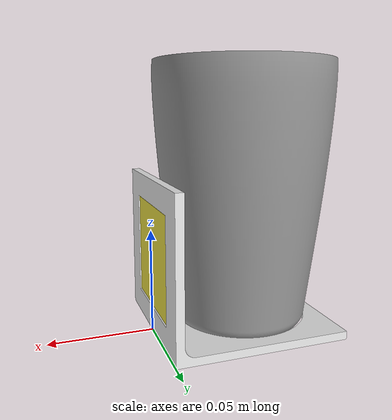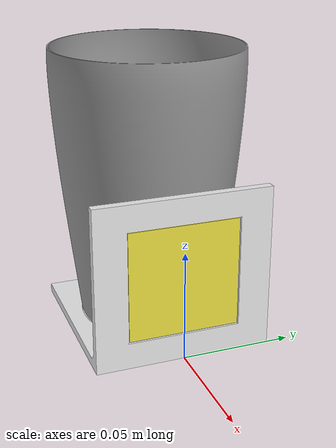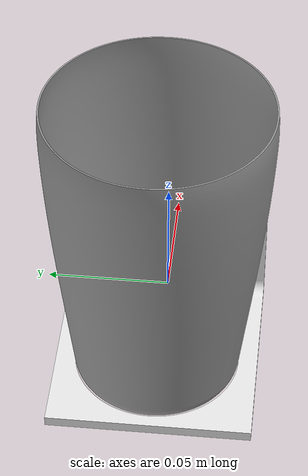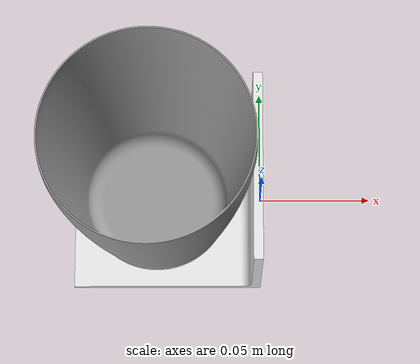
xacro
<?xml version="1.0"?>
<robot name="mixing_cup" xmlns:xacro="http://www.ros.org/wiki/xacro">
	<xacro:arg name="aruco_dae_path" default="bbot_aruco/markers/aruco_44_50mm.dae"/>
	<xacro:macro name="mixing_cup" params="aruco_dae_path">
		<gazebo reference="mixing_cup">
	        <material>Gazebo/Grey</material>
	        <mu1>0.2</mu1>
	        <mu2>0.2</mu2>
	    </gazebo>

	    <gazebo reference="aruco_holder">
	        <material>Gazebo/White</material>
	        <mu1>0.2</mu1>
	        <mu2>0.2</mu2>
	    </gazebo>
		<!-- * * * Link Definitions * * * -->
		<link name="base"/>
		<joint name="joint_base_to_holder" type="fixed">
	            <parent link="base"/>
	            <child link="aruco_holder"/>
	            <origin xyz="0 0 0" rpy="${pi/2.0} 0 ${-pi/2.0}"/>
	    </joint>

		<link name="aruco_holder">
			<inertial>
				<origin xyz="0.0 0 0" rpy="0.0 0 0"/>
				<mass value="0.01" />
				<inertia ixx="1.0" ixy="0.0" ixz="0.0" iyy="1.0" iyz="0.0" izz="1.0"/>
			</inertial>
			<collision>
				<origin xyz="0.0 0 0" rpy="0.0 0 0"/>
				<geometry>
					<mesh filename="package://bbot_description/meshes/mixing_cup_aruco_holder_meters.stl"/>
				</geometry>
			</collision>
			<visual>
				<origin rpy="0.0 0 0" xyz="0.0 0 0"/>
				<geometry>
					<mesh filename="package://bbot_description/meshes/mixing_cup_aruco_holder_meters.stl"/>
				</geometry>
				<material name="White"/>
			</visual>
		</link>

		<joint name="joint_holder_to_cup" type="fixed">
	            <parent link="aruco_holder"/>
	            <child link="mixing_cup"/>
	            <origin xyz="0 0 0.04633" rpy="${0} 0 0"/>
	    </joint>

		<link name="mixing_cup">
			<inertial>
				<origin xyz="0.0 0 0" rpy="0.0 0.0 0"/>
				<mass value="0.01" />
				<inertia ixx="1.0" ixy="0.0" ixz="0.0" iyy="1.0" iyz="0.0" izz="1.0"/>
			</inertial>
			<collision>
				<origin xyz="0.0 0 0" rpy="0.0 0 0"/>
				<geometry>
					<mesh filename="package://bbot_description/meshes/mixing_cup_meters.stl"/>
				</geometry>
			</collision>
			<visual>
				<origin rpy="0.0 0 0" xyz="0.0 0 0"/>
				<geometry>
					<mesh filename="package://bbot_description/meshes/mixing_cup_meters.stl"/>
				</geometry>
				<material name="Grey"/>
			</visual>
		</link>

		<joint name="joint_holder_to_aruco" type="fixed">
	            <parent link="aruco_holder"/>
	            <child link="aruco_marker"/>
	            <origin xyz="0 0.0375 0.001" rpy="0 3.1415 3.1415"/>
	    </joint>

		<link name="aruco_marker">
			<inertial>
				<origin xyz="0.0 0 0" rpy="0.0 0 0"/>
				<mass value="0.01" />
				<inertia ixx="1.0" ixy="0.0" ixz="0.0" iyy="1.0" iyz="0.0" izz="1.0"/>
			</inertial>
			<collision>
				<origin xyz="0.0 0 0" rpy="0.0 0 0"/>
				<geometry>
					<mesh filename="package://${aruco_dae_path}"/>
				</geometry>
			</collision>
			<visual>
				<origin rpy="0.0 0 0" xyz="0.0 0 0"/>
				<geometry>
					<mesh filename="package://${aruco_dae_path}"/>
				</geometry>
			</visual>
		</link>
	</xacro:macro>
	<xacro:mixing_cup aruco_dae_path="$(arg aruco_dae_path)"/>
</robot>
